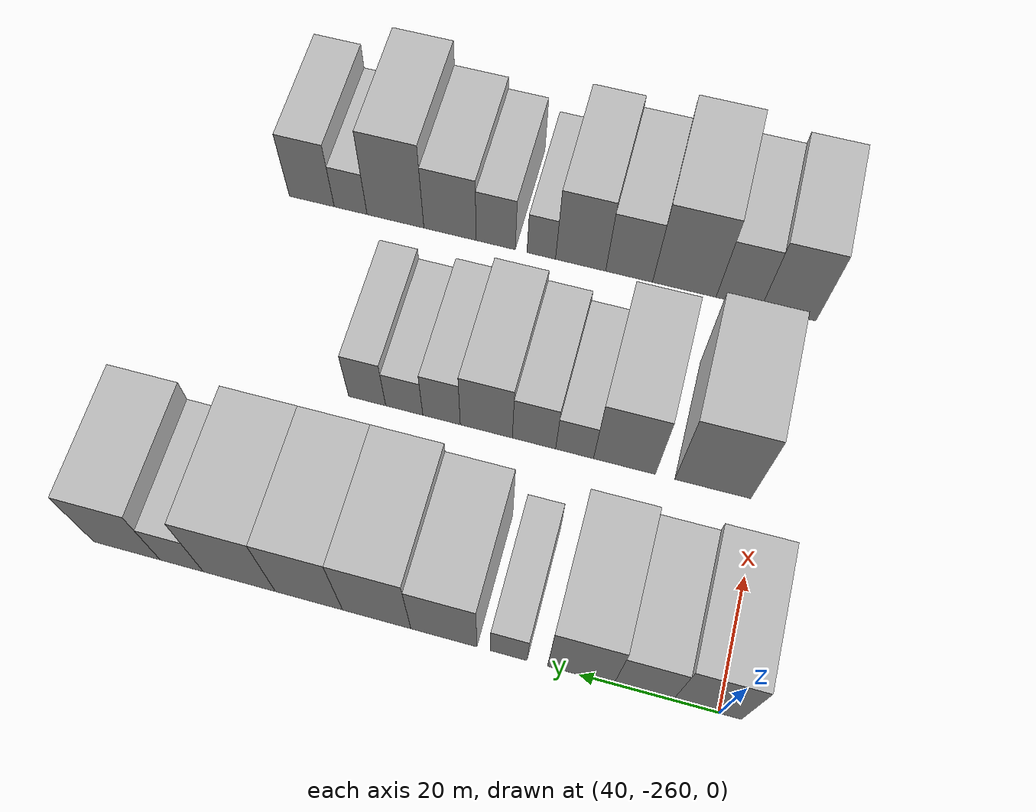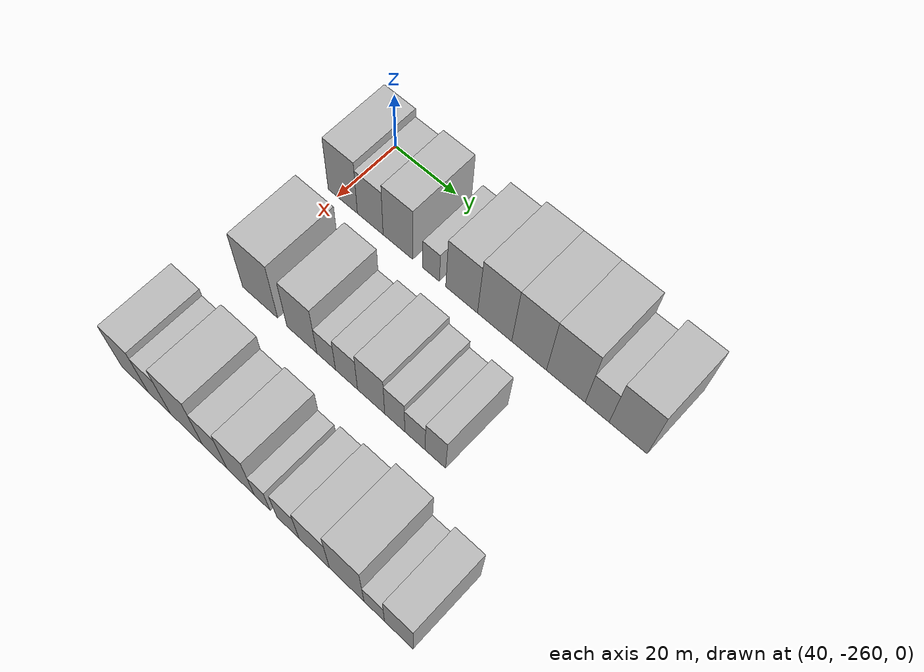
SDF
<sdf version="1.6">
 <world name="default">
  <model name="building_10">
   <static>1</static>
   <pose>50.0000 -258.2499 0 0.000000 0.000000 0.000000</pose>
   <link name="link">
    <pose>0 0 10.50 0 0 0</pose>
    <collision name="collision"><geometry><box><size>20.0000 9.7648 21.0000</size></box></geometry></collision>
    <visual name="visual">
     <cast_shadows>0</cast_shadows>
     <geometry><box><size>20.0000 9.7648 21.0000</size></box></geometry>
     <material>
      <script>
       <uri>model://HANNAS_wall/materials/scripts</uri>
       <uri>model://HANNAS_wall/materials/textures</uri>
       <name>vrc/HANNAS_wall</name>
      </script>
     </material>
    </visual>
   </link>
  </model>
  <model name="building_11">
   <static>1</static>
   <pose>50.0000 -249.1407 0 0.000000 0.000000 0.000000</pose>
   <link name="link">
    <pose>0 0 9.00 0 0 0</pose>
    <collision name="collision"><geometry><box><size>20.0000 8.4536 18.0000</size></box></geometry></collision>
    <visual name="visual">
     <cast_shadows>0</cast_shadows>
     <geometry><box><size>20.0000 8.4536 18.0000</size></box></geometry>
     <material>
      <script>
       <uri>model://HANNAS_wall/materials/scripts</uri>
       <uri>model://HANNAS_wall/materials/textures</uri>
       <name>vrc/HANNAS_wall</name>
      </script>
     </material>
    </visual>
   </link>
  </model>
  <model name="building_12">
   <static>1</static>
   <pose>50.0000 -240.1204 0 0.000000 0.000000 0.000000</pose>
   <link name="link">
    <pose>0 0 10.50 0 0 0</pose>
    <collision name="collision"><geometry><box><size>20.0000 9.5869 21.0000</size></box></geometry></collision>
    <visual name="visual">
     <cast_shadows>0</cast_shadows>
     <geometry><box><size>20.0000 9.5869 21.0000</size></box></geometry>
     <material>
      <script>
       <uri>model://HANNAS_wall/materials/scripts</uri>
       <uri>model://HANNAS_wall/materials/textures</uri>
       <name>vrc/HANNAS_wall</name>
      </script>
     </material>
    </visual>
   </link>
  </model>
  <model name="building_13">
   <static>1</static>
   <pose>50.0000 -229.6478 0 0.000000 0.000000 0.000000</pose>
   <link name="link">
    <pose>0 0 6.00 0 0 0</pose>
    <collision name="collision"><geometry><box><size>20.0000 5.3583 12.0000</size></box></geometry></collision>
    <visual name="visual">
     <cast_shadows>0</cast_shadows>
     <geometry><box><size>20.0000 5.3583 12.0000</size></box></geometry>
     <material>
      <script>
       <uri>model://HANNAS_wall/materials/scripts</uri>
       <uri>model://HANNAS_wall/materials/textures</uri>
       <name>vrc/HANNAS_wall</name>
      </script>
     </material>
    </visual>
   </link>
  </model>
  <model name="building_14">
   <static>1</static>
   <pose>50.0000 -220.0654 0 0.000000 0.000000 0.000000</pose>
   <link name="link">
    <pose>0 0 10.50 0 0 0</pose>
    <collision name="collision"><geometry><box><size>20.0000 9.8064 21.0000</size></box></geometry></collision>
    <visual name="visual">
     <cast_shadows>0</cast_shadows>
     <geometry><box><size>20.0000 9.8064 21.0000</size></box></geometry>
     <material>
      <script>
       <uri>model://HANNAS_wall/materials/scripts</uri>
       <uri>model://HANNAS_wall/materials/textures</uri>
       <name>vrc/HANNAS_wall</name>
      </script>
     </material>
    </visual>
   </link>
  </model>
  <model name="building_15">
   <static>1</static>
   <pose>50.0000 -210.0278 0 0.000000 0.000000 0.000000</pose>
   <link name="link">
    <pose>0 0 12.00 0 0 0</pose>
    <collision name="collision"><geometry><box><size>20.0000 10.2688 24.0000</size></box></geometry></collision>
    <visual name="visual">
     <cast_shadows>0</cast_shadows>
     <geometry><box><size>20.0000 10.2688 24.0000</size></box></geometry>
     <material>
      <script>
       <uri>model://HANNAS_wall/materials/scripts</uri>
       <uri>model://HANNAS_wall/materials/textures</uri>
       <name>vrc/HANNAS_wall</name>
      </script>
     </material>
    </visual>
   </link>
  </model>
  <model name="building_16">
   <static>1</static>
   <pose>50.0000 -199.7752 0 0.000000 0.000000 0.000000</pose>
   <link name="link">
    <pose>0 0 12.00 0 0 0</pose>
    <collision name="collision"><geometry><box><size>20.0000 10.2365 24.0000</size></box></geometry></collision>
    <visual name="visual">
     <cast_shadows>0</cast_shadows>
     <geometry><box><size>20.0000 10.2365 24.0000</size></box></geometry>
     <material>
      <script>
       <uri>model://HANNAS_wall/materials/scripts</uri>
       <uri>model://HANNAS_wall/materials/textures</uri>
       <name>vrc/HANNAS_wall</name>
      </script>
     </material>
    </visual>
   </link>
  </model>
  <model name="building_17">
   <static>1</static>
   <pose>50.0000 -189.1003 0 0.000000 0.000000 0.000000</pose>
   <link name="link">
    <pose>0 0 12.00 0 0 0</pose>
    <collision name="collision"><geometry><box><size>20.0000 11.1133 24.0000</size></box></geometry></collision>
    <visual name="visual">
     <cast_shadows>0</cast_shadows>
     <geometry><box><size>20.0000 11.1133 24.0000</size></box></geometry>
     <material>
      <script>
       <uri>model://HANNAS_wall/materials/scripts</uri>
       <uri>model://HANNAS_wall/materials/textures</uri>
       <name>vrc/HANNAS_wall</name>
      </script>
     </material>
    </visual>
   </link>
  </model>
  <model name="building_18">
   <static>1</static>
   <pose>50.0000 -180.1797 0 0.000000 0.000000 0.000000</pose>
   <link name="link">
    <pose>0 0 7.50 0 0 0</pose>
    <collision name="collision"><geometry><box><size>20.0000 6.7280 15.0000</size></box></geometry></collision>
    <visual name="visual">
     <cast_shadows>0</cast_shadows>
     <geometry><box><size>20.0000 6.7280 15.0000</size></box></geometry>
     <material>
      <script>
       <uri>model://HANNAS_wall/materials/scripts</uri>
       <uri>model://HANNAS_wall/materials/textures</uri>
       <name>vrc/HANNAS_wall</name>
      </script>
     </material>
    </visual>
   </link>
  </model>
  <model name="building_19">
   <static>1</static>
   <pose>50.0000 -171.5778 0 0.000000 0.000000 0.000000</pose>
   <link name="link">
    <pose>0 0 10.50 0 0 0</pose>
    <collision name="collision"><geometry><box><size>20.0000 10.4758 21.0000</size></box></geometry></collision>
    <visual name="visual">
     <cast_shadows>0</cast_shadows>
     <geometry><box><size>20.0000 10.4758 21.0000</size></box></geometry>
     <material>
      <script>
       <uri>model://HANNAS_wall/materials/scripts</uri>
       <uri>model://HANNAS_wall/materials/textures</uri>
       <name>vrc/HANNAS_wall</name>
      </script>
     </material>
    </visual>
   </link>
  </model>
  <model name="building_85">
   <static>1</static>
   <pose>82.0000 -252.9175 0 0.000000 0.000000 0.000000</pose>
   <link name="link">
    <pose>0 0 12.00 0 0 0</pose>
    <collision name="collision"><geometry><box><size>20.0000 11.5948 24.0000</size></box></geometry></collision>
    <visual name="visual">
     <cast_shadows>0</cast_shadows>
     <geometry><box><size>20.0000 11.5948 24.0000</size></box></geometry>
     <material>
      <script>
       <uri>model://HANNAS_wall/materials/scripts</uri>
       <uri>model://HANNAS_wall/materials/textures</uri>
       <name>vrc/HANNAS_wall</name>
      </script>
     </material>
    </visual>
   </link>
  </model>
  <model name="building_86">
   <static>1</static>
   <pose>82.0000 -239.3243 0 0.000000 0.000000 0.000000</pose>
   <link name="link">
    <pose>0 0 10.50 0 0 0</pose>
    <collision name="collision"><geometry><box><size>20.0000 9.5917 21.0000</size></box></geometry></collision>
    <visual name="visual">
     <cast_shadows>0</cast_shadows>
     <geometry><box><size>20.0000 9.5917 21.0000</size></box></geometry>
     <material>
      <script>
       <uri>model://HANNAS_wall/materials/scripts</uri>
       <uri>model://HANNAS_wall/materials/textures</uri>
       <name>vrc/HANNAS_wall</name>
      </script>
     </material>
    </visual>
   </link>
  </model>
  <model name="building_87">
   <static>1</static>
   <pose>82.0000 -231.5655 0 0.000000 0.000000 0.000000</pose>
   <link name="link">
    <pose>0 0 6.00 0 0 0</pose>
    <collision name="collision"><geometry><box><size>20.0000 5.9258 12.0000</size></box></geometry></collision>
    <visual name="visual">
     <cast_shadows>0</cast_shadows>
     <geometry><box><size>20.0000 5.9258 12.0000</size></box></geometry>
     <material>
      <script>
       <uri>model://HANNAS_wall/materials/scripts</uri>
       <uri>model://HANNAS_wall/materials/textures</uri>
       <name>vrc/HANNAS_wall</name>
      </script>
     </material>
    </visual>
   </link>
  </model>
  <model name="building_88">
   <static>1</static>
   <pose>82.0000 -225.1864 0 0.000000 0.000000 0.000000</pose>
   <link name="link">
    <pose>0 0 7.50 0 0 0</pose>
    <collision name="collision"><geometry><box><size>20.0000 6.8324 15.0000</size></box></geometry></collision>
    <visual name="visual">
     <cast_shadows>0</cast_shadows>
     <geometry><box><size>20.0000 6.8324 15.0000</size></box></geometry>
     <material>
      <script>
       <uri>model://HANNAS_wall/materials/scripts</uri>
       <uri>model://HANNAS_wall/materials/textures</uri>
       <name>vrc/HANNAS_wall</name>
      </script>
     </material>
    </visual>
   </link>
  </model>
  <model name="building_89">
   <static>1</static>
   <pose>82.0000 -217.6372 0 0.000000 0.000000 0.000000</pose>
   <link name="link">
    <pose>0 0 9.00 0 0 0</pose>
    <collision name="collision"><geometry><box><size>20.0000 8.2659 18.0000</size></box></geometry></collision>
    <visual name="visual">
     <cast_shadows>0</cast_shadows>
     <geometry><box><size>20.0000 8.2659 18.0000</size></box></geometry>
     <material>
      <script>
       <uri>model://HANNAS_wall/materials/scripts</uri>
       <uri>model://HANNAS_wall/materials/textures</uri>
       <name>vrc/HANNAS_wall</name>
      </script>
     </material>
    </visual>
   </link>
  </model>
  <model name="building_90">
   <static>1</static>
   <pose>82.0000 -210.5041 0 0.000000 0.000000 0.000000</pose>
   <link name="link">
    <pose>0 0 7.50 0 0 0</pose>
    <collision name="collision"><geometry><box><size>20.0000 6.0003 15.0000</size></box></geometry></collision>
    <visual name="visual">
     <cast_shadows>0</cast_shadows>
     <geometry><box><size>20.0000 6.0003 15.0000</size></box></geometry>
     <material>
      <script>
       <uri>model://HANNAS_wall/materials/scripts</uri>
       <uri>model://HANNAS_wall/materials/textures</uri>
       <name>vrc/HANNAS_wall</name>
      </script>
     </material>
    </visual>
   </link>
  </model>
  <model name="building_91">
   <static>1</static>
   <pose>82.0000 -204.5044 0 0.000000 0.000000 0.000000</pose>
   <link name="link">
    <pose>0 0 6.00 0 0 0</pose>
    <collision name="collision"><geometry><box><size>20.0000 5.9992 12.0000</size></box></geometry></collision>
    <visual name="visual">
     <cast_shadows>0</cast_shadows>
     <geometry><box><size>20.0000 5.9992 12.0000</size></box></geometry>
     <material>
      <script>
       <uri>model://HANNAS_wall/materials/scripts</uri>
       <uri>model://HANNAS_wall/materials/textures</uri>
       <name>vrc/HANNAS_wall</name>
      </script>
     </material>
    </visual>
   </link>
  </model>
  <model name="building_92">
   <static>1</static>
   <pose>82.0000 -198.5047 0 0.000000 0.000000 0.000000</pose>
   <link name="link">
    <pose>0 0 7.50 0 0 0</pose>
    <collision name="collision"><geometry><box><size>20.0000 6.0001 15.0000</size></box></geometry></collision>
    <visual name="visual">
     <cast_shadows>0</cast_shadows>
     <geometry><box><size>20.0000 6.0001 15.0000</size></box></geometry>
     <material>
      <script>
       <uri>model://HANNAS_wall/materials/scripts</uri>
       <uri>model://HANNAS_wall/materials/textures</uri>
       <name>vrc/HANNAS_wall</name>
      </script>
     </material>
    </visual>
   </link>
  </model>
  <model name="building_159">
   <static>1</static>
   <pose>114.0000 -259.1006 0 0.000000 0.000000 0.000000</pose>
   <link name="link">
    <pose>0 0 10.50 0 0 0</pose>
    <collision name="collision"><geometry><box><size>20.0000 8.8594 21.0000</size></box></geometry></collision>
    <visual name="visual">
     <cast_shadows>0</cast_shadows>
     <geometry><box><size>20.0000 8.8594 21.0000</size></box></geometry>
     <material>
      <script>
       <uri>model://HANNAS_wall/materials/scripts</uri>
       <uri>model://HANNAS_wall/materials/textures</uri>
       <name>vrc/HANNAS_wall</name>
      </script>
     </material>
    </visual>
   </link>
  </model>
  <model name="building_160">
   <static>1</static>
   <pose>114.0000 -250.9980 0 0.000000 0.000000 0.000000</pose>
   <link name="link">
    <pose>0 0 9.00 0 0 0</pose>
    <collision name="collision"><geometry><box><size>20.0000 7.3457 18.0000</size></box></geometry></collision>
    <visual name="visual">
     <cast_shadows>0</cast_shadows>
     <geometry><box><size>20.0000 7.3457 18.0000</size></box></geometry>
     <material>
      <script>
       <uri>model://HANNAS_wall/materials/scripts</uri>
       <uri>model://HANNAS_wall/materials/textures</uri>
       <name>vrc/HANNAS_wall</name>
      </script>
     </material>
    </visual>
   </link>
  </model>
  <model name="building_161">
   <static>1</static>
   <pose>114.0000 -242.0949 0 0.000000 0.000000 0.000000</pose>
   <link name="link">
    <pose>0 0 12.00 0 0 0</pose>
    <collision name="collision"><geometry><box><size>20.0000 10.4605 24.0000</size></box></geometry></collision>
    <visual name="visual">
     <cast_shadows>0</cast_shadows>
     <geometry><box><size>20.0000 10.4605 24.0000</size></box></geometry>
     <material>
      <script>
       <uri>model://HANNAS_wall/materials/scripts</uri>
       <uri>model://HANNAS_wall/materials/textures</uri>
       <name>vrc/HANNAS_wall</name>
      </script>
     </material>
    </visual>
   </link>
  </model>
  <model name="building_162">
   <static>1</static>
   <pose>114.0000 -232.9750 0 0.000000 0.000000 0.000000</pose>
   <link name="link">
    <pose>0 0 9.00 0 0 0</pose>
    <collision name="collision"><geometry><box><size>20.0000 7.7792 18.0000</size></box></geometry></collision>
    <visual name="visual">
     <cast_shadows>0</cast_shadows>
     <geometry><box><size>20.0000 7.7792 18.0000</size></box></geometry>
     <material>
      <script>
       <uri>model://HANNAS_wall/materials/scripts</uri>
       <uri>model://HANNAS_wall/materials/textures</uri>
       <name>vrc/HANNAS_wall</name>
      </script>
     </material>
    </visual>
   </link>
  </model>
  <model name="building_163">
   <static>1</static>
   <pose>114.0000 -224.8785 0 0.000000 0.000000 0.000000</pose>
   <link name="link">
    <pose>0 0 10.50 0 0 0</pose>
    <collision name="collision"><geometry><box><size>20.0000 8.4138 21.0000</size></box></geometry></collision>
    <visual name="visual">
     <cast_shadows>0</cast_shadows>
     <geometry><box><size>20.0000 8.4138 21.0000</size></box></geometry>
     <material>
      <script>
       <uri>model://HANNAS_wall/materials/scripts</uri>
       <uri>model://HANNAS_wall/materials/textures</uri>
       <name>vrc/HANNAS_wall</name>
      </script>
     </material>
    </visual>
   </link>
  </model>
  <model name="building_164">
   <static>1</static>
   <pose>114.0000 -218.2696 0 0.000000 0.000000 0.000000</pose>
   <link name="link">
    <pose>0 0 6.00 0 0 0</pose>
    <collision name="collision"><geometry><box><size>20.0000 4.8040 12.0000</size></box></geometry></collision>
    <visual name="visual">
     <cast_shadows>0</cast_shadows>
     <geometry><box><size>20.0000 4.8040 12.0000</size></box></geometry>
     <material>
      <script>
       <uri>model://HANNAS_wall/materials/scripts</uri>
       <uri>model://HANNAS_wall/materials/textures</uri>
       <name>vrc/HANNAS_wall</name>
      </script>
     </material>
    </visual>
   </link>
  </model>
  <model name="building_165">
   <static>1</static>
   <pose>114.0000 -210.5321 0 0.000000 0.000000 0.000000</pose>
   <link name="link">
    <pose>0 0 7.50 0 0 0</pose>
    <collision name="collision"><geometry><box><size>20.0000 6.6710 15.0000</size></box></geometry></collision>
    <visual name="visual">
     <cast_shadows>0</cast_shadows>
     <geometry><box><size>20.0000 6.6710 15.0000</size></box></geometry>
     <material>
      <script>
       <uri>model://HANNAS_wall/materials/scripts</uri>
       <uri>model://HANNAS_wall/materials/textures</uri>
       <name>vrc/HANNAS_wall</name>
      </script>
     </material>
    </visual>
   </link>
  </model>
  <model name="building_166">
   <static>1</static>
   <pose>114.0000 -202.7201 0 0.000000 0.000000 0.000000</pose>
   <link name="link">
    <pose>0 0 9.00 0 0 0</pose>
    <collision name="collision"><geometry><box><size>20.0000 8.9531 18.0000</size></box></geometry></collision>
    <visual name="visual">
     <cast_shadows>0</cast_shadows>
     <geometry><box><size>20.0000 8.9531 18.0000</size></box></geometry>
     <material>
      <script>
       <uri>model://HANNAS_wall/materials/scripts</uri>
       <uri>model://HANNAS_wall/materials/textures</uri>
       <name>vrc/HANNAS_wall</name>
      </script>
     </material>
    </visual>
   </link>
  </model>
  <model name="building_167">
   <static>1</static>
   <pose>114.0000 -193.3153 0 0.000000 0.000000 0.000000</pose>
   <link name="link">
    <pose>0 0 12.00 0 0 0</pose>
    <collision name="collision"><geometry><box><size>20.0000 9.8565 24.0000</size></box></geometry></collision>
    <visual name="visual">
     <cast_shadows>0</cast_shadows>
     <geometry><box><size>20.0000 9.8565 24.0000</size></box></geometry>
     <material>
      <script>
       <uri>model://HANNAS_wall/materials/scripts</uri>
       <uri>model://HANNAS_wall/materials/textures</uri>
       <name>vrc/HANNAS_wall</name>
      </script>
     </material>
    </visual>
   </link>
  </model>
  <model name="building_168">
   <static>1</static>
   <pose>114.0000 -185.5214 0 0.000000 0.000000 0.000000</pose>
   <link name="link">
    <pose>0 0 6.00 0 0 0</pose>
    <collision name="collision"><geometry><box><size>20.0000 5.7313 12.0000</size></box></geometry></collision>
    <visual name="visual">
     <cast_shadows>0</cast_shadows>
     <geometry><box><size>20.0000 5.7313 12.0000</size></box></geometry>
     <material>
      <script>
       <uri>model://HANNAS_wall/materials/scripts</uri>
       <uri>model://HANNAS_wall/materials/textures</uri>
       <name>vrc/HANNAS_wall</name>
      </script>
     </material>
    </visual>
   </link>
  </model>
  <model name="building_169">
   <static>1</static>
   <pose>114.0000 -178.7162 0 0.000000 0.000000 0.000000</pose>
   <link name="link">
    <pose>0 0 9.00 0 0 0</pose>
    <collision name="collision"><geometry><box><size>20.0000 7.8791 18.0000</size></box></geometry></collision>
    <visual name="visual">
     <cast_shadows>0</cast_shadows>
     <geometry><box><size>20.0000 7.8791 18.0000</size></box></geometry>
     <material>
      <script>
       <uri>model://HANNAS_wall/materials/scripts</uri>
       <uri>model://HANNAS_wall/materials/textures</uri>
       <name>vrc/HANNAS_wall</name>
      </script>
     </material>
    </visual>
   </link>
  </model>
 </world>
</sdf>
